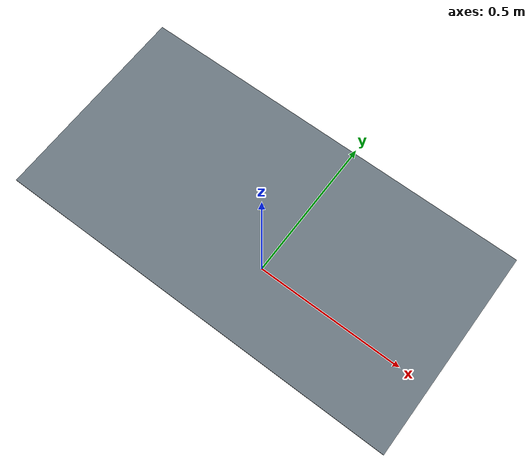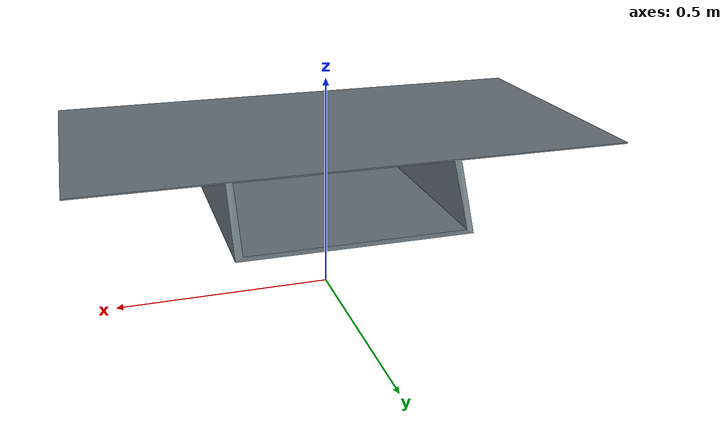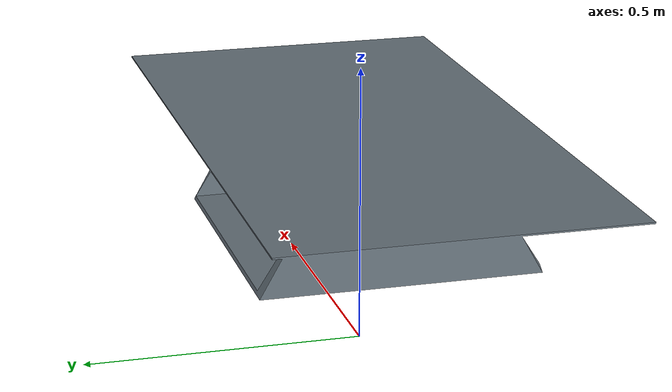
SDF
<?xml version="1.0" ?>
<sdf version="1.5">
  <model name="table">
    <static>true</static>
    <link name="table_link">
        <pose>0 0 0.3 0 0 0</pose>
        <collision name="ctable_collision">
         <geometry>
	        <box>
                 <size>1.16 0.60 0.19</size>
            </box>
        </geometry>
        <surface>
          <friction>
            <ode>
              <mu>10</mu>
                <mu2>10</mu2>
               <slip1>0.2</slip1>
                <slip2>0.2</slip2>
            </ode>
          </friction>
        </surface>
      </collision>

      <visual name="table_mesh">
        <cast_shadows>true</cast_shadows>
        <geometry>
            <mesh>
                <uri>model://lc_table/meshes/table.dae</uri>
            </mesh>
        </geometry>
	    <material>
          <script>
            <uri>model://lc_table/materials/scripts</uri>
            <uri>model://lc_table/materials/textures</uri>
            <name>tableMat/Diffuse</name>
          </script>
        </material>
      </visual>
    </link>
  </model>
</sdf>
